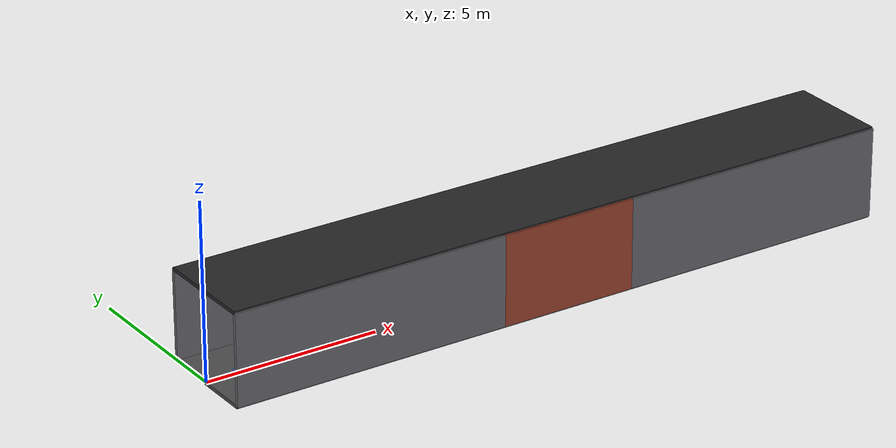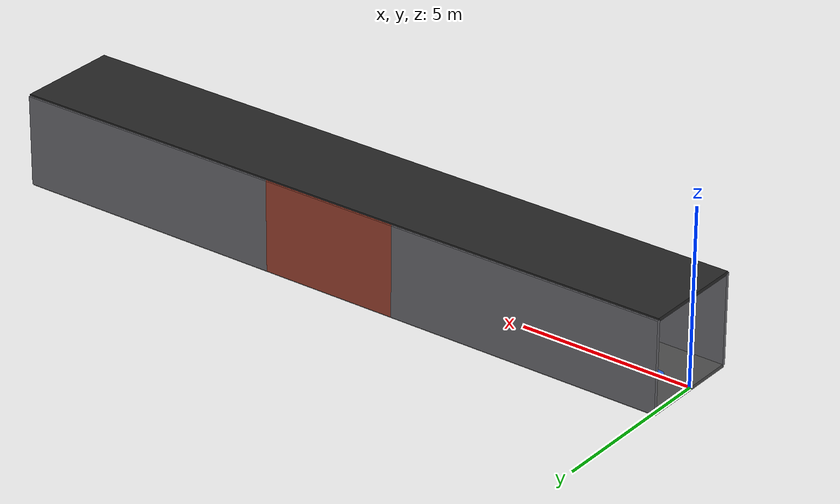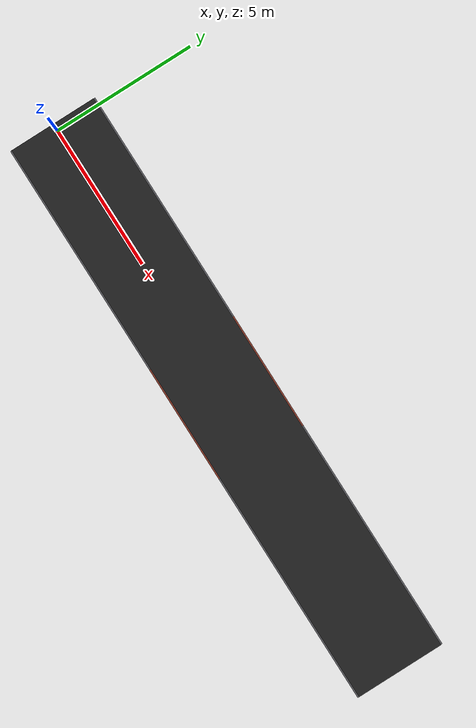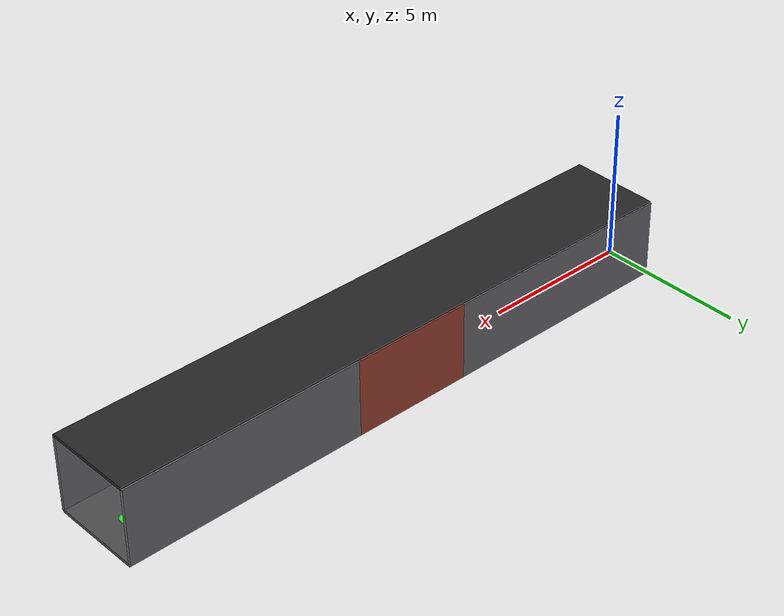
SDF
<?xml version="1.0" ?>
<sdf version="1.10">
  <world name="atide_tunnel">

    <!-- Gazebo Harmonic requires these systems declared explicitly —
         unlike classic Gazebo, nothing runs without them. -->
    <plugin filename="gz-sim-physics-system" name="gz::sim::systems::Physics"/>
    <plugin filename="gz-sim-user-commands-system" name="gz::sim::systems::UserCommands"/>
    <plugin filename="gz-sim-scene-broadcaster-system" name="gz::sim::systems::SceneBroadcaster"/>
    <plugin filename="gz-sim-sensors-system" name="gz::sim::systems::Sensors">
      <render_engine>ogre2</render_engine>
    </plugin>
    <plugin filename="gz-sim-contact-system" name="gz::sim::systems::Contact"/>

    <physics name="default_physics" type="ode">
      <max_step_size>0.001</max_step_size>
      <real_time_factor>1.0</real_time_factor>
    </physics>

    <!-- Dim tunnel lighting: low ambient + a handful of point lights along
         the corridor rather than one bright directional sun. -->
    <scene>
      <ambient>0.15 0.15 0.17 1</ambient>
      <background>0.05 0.05 0.06 1</background>
      <shadows>true</shadows>
    </scene>

    <light type="point" name="entry_light">
      <pose>1 0 2.2 0 0 0</pose>
      <diffuse>0.6 0.6 0.55 1</diffuse>
      <specular>0.2 0.2 0.2 1</specular>
      <attenuation>
        <range>8</range>
        <constant>0.3</constant>
        <linear>0.2</linear>
        <quadratic>0.02</quadratic>
      </attenuation>
      <cast_shadows>false</cast_shadows>
    </light>

    <light type="point" name="mid_light">
      <pose>10 0 2.2 0 0 0</pose>
      <diffuse>0.4 0.4 0.38 1</diffuse>
      <specular>0.15 0.15 0.15 1</specular>
      <attenuation>
        <range>8</range>
        <constant>0.3</constant>
        <linear>0.25</linear>
        <quadratic>0.03</quadratic>
      </attenuation>
      <cast_shadows>false</cast_shadows>
    </light>

    <light type="point" name="exit_light">
      <pose>19 0 2.2 0 0 0</pose>
      <diffuse>0.6 0.6 0.55 1</diffuse>
      <specular>0.2 0.2 0.2 1</specular>
      <attenuation>
        <range>8</range>
        <constant>0.3</constant>
        <linear>0.2</linear>
        <quadratic>0.02</quadratic>
      </attenuation>
      <cast_shadows>false</cast_shadows>
    </light>

    <!-- Floor: 20m corridor, 3m wide -->
    <model name="floor">
      <static>true</static>
      <link name="floor_link">
        <collision name="floor_collision">
          <geometry><box><size>20 3 0.1</size></box></geometry>
        </collision>
        <visual name="floor_visual">
          <geometry><box><size>20 3 0.1</size></box></geometry>
          <material>
            <ambient>0.25 0.25 0.25 1</ambient>
            <diffuse>0.3 0.3 0.3 1</diffuse>
          </material>
        </visual>
      </link>
      <pose>10 0 -0.05 0 0 0</pose>
    </model>

    <!-- Ceiling: encloses the tunnel, reinforces the confined-space feel -->
    <model name="ceiling">
      <static>true</static>
      <link name="ceiling_link">
        <collision name="ceiling_collision">
          <geometry><box><size>20 3 0.1</size></box></geometry>
        </collision>
        <visual name="ceiling_visual">
          <geometry><box><size>20 3 0.1</size></box></geometry>
          <material>
            <ambient>0.12 0.12 0.12 1</ambient>
            <diffuse>0.15 0.15 0.15 1</diffuse>
          </material>
        </visual>
      </link>
      <pose>10 0 2.55 0 0 0</pose>
    </model>

    <!-- Left wall: three segments so the middle one can carry a distinct
         "fault zone" material without needing a separate texture map. -->
    <model name="wall_left_entry">
      <static>true</static>
      <link name="link">
        <collision name="collision"><geometry><box><size>8 0.1 2.6</size></box></geometry></collision>
        <visual name="visual">
          <geometry><box><size>8 0.1 2.6</size></box></geometry>
          <material><ambient>0.35 0.35 0.37 1</ambient><diffuse>0.4 0.4 0.42 1</diffuse></material>
        </visual>
      </link>
      <pose>4 1.5 1.25 0 0 0</pose>
    </model>

    <model name="wall_left_faultzone">
      <static>true</static>
      <link name="link">
        <collision name="collision"><geometry><box><size>4 0.1 2.6</size></box></geometry></collision>
        <visual name="visual">
          <geometry><box><size>4 0.1 2.6</size></box></geometry>
          <material><ambient>0.5 0.2 0.15 1</ambient><diffuse>0.6 0.25 0.18 1</diffuse></material>
        </visual>
      </link>
      <pose>10 1.5 1.25 0 0 0</pose>
    </model>

    <model name="wall_left_exit">
      <static>true</static>
      <link name="link">
        <collision name="collision"><geometry><box><size>8 0.1 2.6</size></box></geometry></collision>
        <visual name="visual">
          <geometry><box><size>8 0.1 2.6</size></box></geometry>
          <material><ambient>0.35 0.35 0.37 1</ambient><diffuse>0.4 0.4 0.42 1</diffuse></material>
        </visual>
      </link>
      <pose>16 1.5 1.25 0 0 0</pose>
    </model>

    <!-- Right wall: same three-segment split, mirrored -->
    <model name="wall_right_entry">
      <static>true</static>
      <link name="link">
        <collision name="collision"><geometry><box><size>8 0.1 2.6</size></box></geometry></collision>
        <visual name="visual">
          <geometry><box><size>8 0.1 2.6</size></box></geometry>
          <material><ambient>0.35 0.35 0.37 1</ambient><diffuse>0.4 0.4 0.42 1</diffuse></material>
        </visual>
      </link>
      <pose>4 -1.5 1.25 0 0 0</pose>
    </model>

    <model name="wall_right_faultzone">
      <static>true</static>
      <link name="link">
        <collision name="collision"><geometry><box><size>4 0.1 2.6</size></box></geometry></collision>
        <visual name="visual">
          <geometry><box><size>4 0.1 2.6</size></box></geometry>
          <material><ambient>0.5 0.2 0.15 1</ambient><diffuse>0.6 0.25 0.18 1</diffuse></material>
        </visual>
      </link>
      <pose>10 -1.5 1.25 0 0 0</pose>
    </model>

    <model name="wall_right_exit">
      <static>true</static>
      <link name="link">
        <collision name="collision"><geometry><box><size>8 0.1 2.6</size></box></geometry></collision>
        <visual name="visual">
          <geometry><box><size>8 0.1 2.6</size></box></geometry>
          <material><ambient>0.35 0.35 0.37 1</ambient><diffuse>0.4 0.4 0.42 1</diffuse></material>
        </visual>
      </link>
      <pose>16 -1.5 1.25 0 0 0</pose>
    </model>

    <!-- Goal marker at the far end: visual only, no collision, so Nav2's
         costmap doesn't treat it as an obstacle. -->
    <model name="goal_marker">
      <static>true</static>
      <link name="link">
        <visual name="visual">
          <geometry><cylinder><radius>0.2</radius><length>0.05</length></cylinder></geometry>
          <material><ambient>0.1 0.7 0.1 1</ambient><diffuse>0.15 0.9 0.15 1</diffuse></material>
        </visual>
      </link>
      <pose>19 0 0.03 0 0 0</pose>
    </model>

    <!-- Spawn point marker at the near end, for reference when placing the rover -->
    <model name="spawn_marker">
      <static>true</static>
      <link name="link">
        <visual name="visual">
          <geometry><cylinder><radius>0.2</radius><length>0.05</length></cylinder></geometry>
          <material><ambient>0.1 0.3 0.7 1</ambient><diffuse>0.15 0.4 0.9 1</diffuse></material>
        </visual>
      </link>
      <pose>1 0 0.03 0 0 0</pose>
    </model>

  </world>
</sdf>
